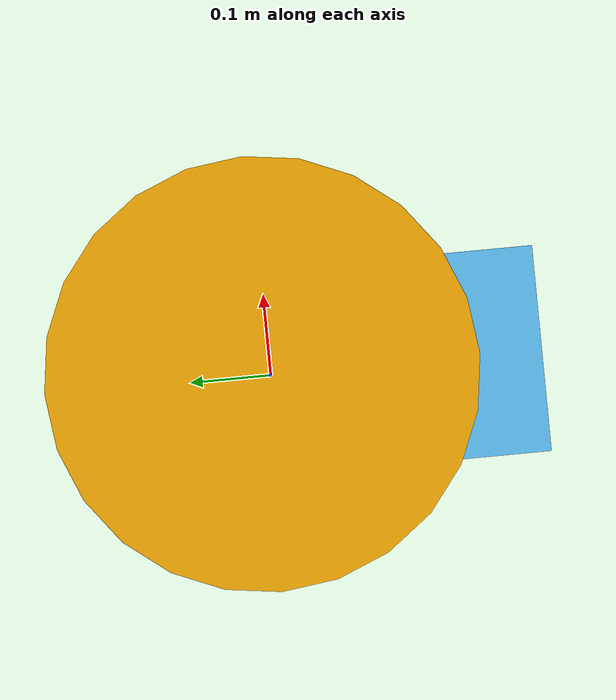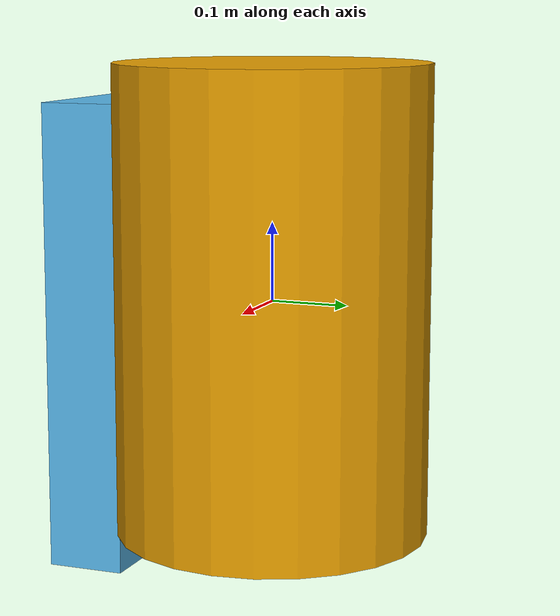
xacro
<?xml version="1.0"?>
<robot name="myfirst">
  <link name="base_link">
    <visual>
      <geometry>
        <cylinder length="0.6" radius="0.2"/>
      </geometry>
    </visual>
  </link>

  <link name="right_leg">
    <visual>
      <geometry>
        <box size="0.6 0.1 0.2"/>
      </geometry>
      <origin rpy="0 1.57075 0" xyz="0 0 -0.3"/>
    </visual>
  </link>

  <joint name="base_to_right_leg" type="fixed">
    <parent link="base_link"/>
    <child link="right_leg"/>
    <origin xyz="0 -0.22 0.25"/>
  </joint>

</robot>
